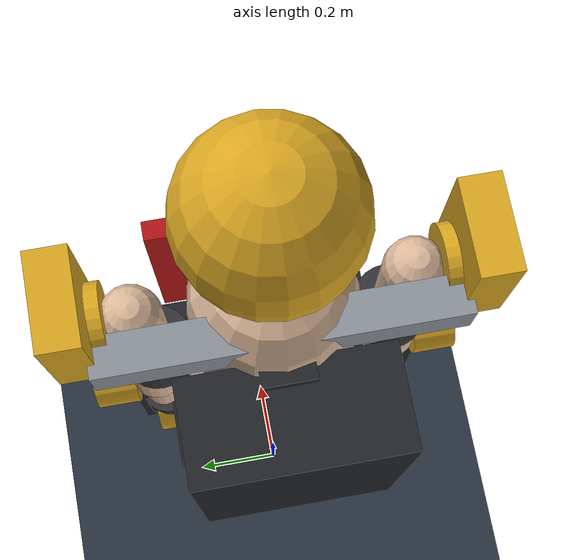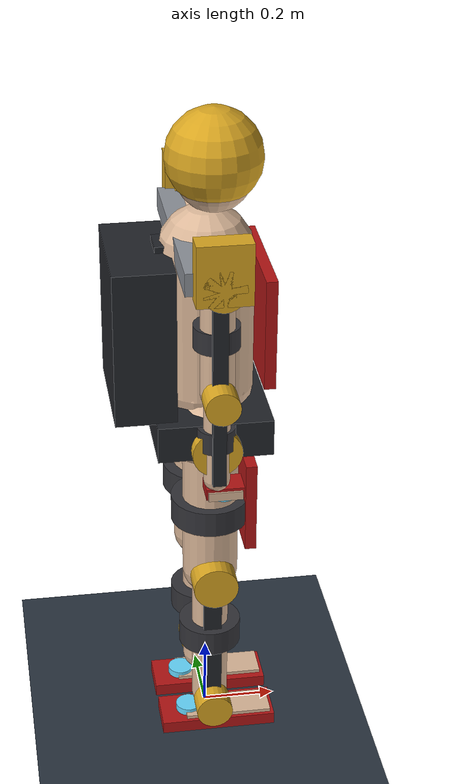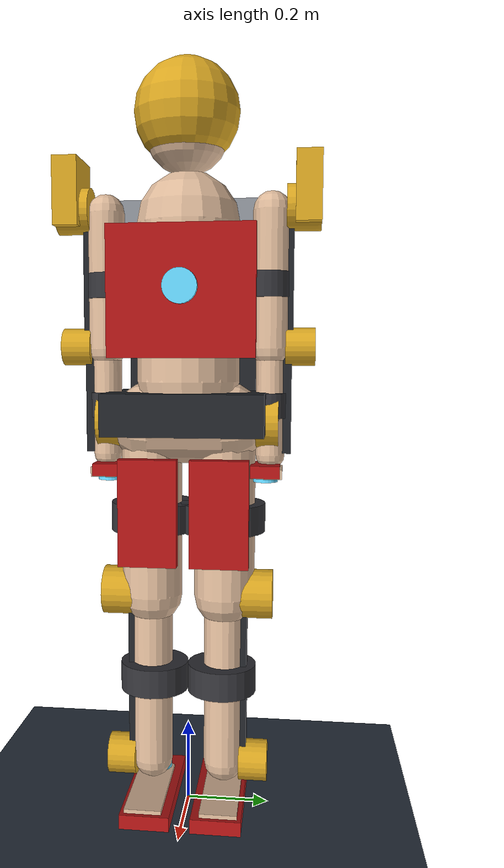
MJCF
<mujoco model="iron_man_exosuit">
  <compiler angle="radian" />

  <worldbody>
    <light pos="1.5 -2 3" dir="-0.4 0.5 -0.8" diffuse="0.9 0.9 0.9" castshadow="true" /><geom name="floor" type="plane" size="20 20 0.1" material="grid" contype="1" conaffinity="1" /><body name="pelvis_frame" pos="0 0 0.0050"><freejoint name="root" /><geom size="0.15 0.19 0.05" pos="0 0 0.98425" type="box" rgba="0.13 0.14 0.16 1" />
    <body name="spine_frame" pos="0 0 0.96425">
      <inertial pos="-0.101456 0 0.333504" quat="0.698535 0.109769 0.109769 0.698535" mass="15.8" diaginertia="0.684424 0.637274 0.307833" />
      <joint name="trunk_flex" range="-0.35 0.5" actuatorfrcrange="-120 120" damping="0.1" axis="0 1 0" />
      <geom size="0.025 0.04 0.252" pos="-0.11 0 0.252" type="box" rgba="0.13 0.14 0.16 1" />
      <geom size="0.08 0.16 0.21" pos="-0.175 0 0.2772" type="box" rgba="0.13 0.14 0.16 1" />
      <geom size="0.015 0.17 0.15" pos="0.14 0 0.3024" type="box" rgba="0.7 0.08 0.08 1" />
      <geom size="0.04 0.01" pos="0.16 0 0.31248" quat="0.707107 0 0.707107 0" type="cylinder" rgba="0.4 0.85 1 1" />
      <geom size="0.03 0.265 0.03" pos="-0.06 0 0.504" type="box" rgba="0.55 0.57 0.6 1" />
      <geom size="0.125" pos="0.02 0 0.72075" rgba="0.85 0.65 0.13 1" />
      <body name="left_shoulder_module" pos="0 0.235 0.504">
        <inertial pos="0 0.042381 0.00952381" quat="0.705575 -0.0465183 0.0465183 0.705575" mass="2.1" diaginertia="0.0045757 0.00392762 0.00340491" />
        <joint name="left_shoulder_abduction" range="-0.3 2.6" actuatorfrcrange="-60 60" damping="0.1" axis="1 0 0" />
        <geom size="0.055 0.04" pos="0 0.04 0" quat="0.707107 0.707107 0 0" type="cylinder" rgba="0.85 0.65 0.13 1" />
        <geom size="0.07 0.03 0.08" pos="0 0.05 0.04" type="box" rgba="0.85 0.65 0.13 1" />
        <body name="left_upper_arm_strut">
          <inertial pos="0 0.0106818 -0.246344" quat="0.994761 0.102225 0 0" mass="2.2" diaginertia="0.0241996 0.0232209 0.0028457" />
          <joint name="left_shoulder_flexion" range="-1 3" actuatorfrcrange="-60 60" damping="0.1" axis="0 1 0" />
          <geom size="0.02 0.0175 0.16275" pos="0 0 -0.16275" type="box" rgba="0.13 0.14 0.16 1" />
          <geom size="0.06 0.03" pos="0 -0.05 -0.179025" type="cylinder" rgba="0.2 0.2 0.22 1" />
          <geom size="0.045 0.035" pos="0 0.035 -0.3255" quat="0.707107 0.707107 0 0" type="cylinder" rgba="0.85 0.65 0.13 1" />
          <body name="left_forearm_strut" pos="0 0 -0.3255">
            <inertial pos="0 -0.0132353 -0.131507" quat="0.999837 -0.018029 0 0" mass="0.85" diaginertia="0.00392615 0.00358846 0.000772693" />
            <joint name="left_elbow_flexion" range="-2.4 0.05" actuatorfrcrange="-40 40" damping="0.1" axis="0 1 0" />
            <geom size="0.0175 0.015 0.12775" pos="0 0 -0.12775" type="box" rgba="0.13 0.14 0.16 1" />
            <geom size="0.05 0.03" pos="0 -0.045 -0.140525" type="cylinder" rgba="0.2 0.2 0.22 1" />
            <body name="left_hand" pos="0 0 -0.2555">
              <inertial pos="0.02 -0.045 -0.046" quat="0 0.707107 0 0.707107" mass="0.5" diaginertia="0.000502 0.000397 0.000248" />
              <joint name="left_wrist_flexion" range="-0.8 0.8" actuatorfrcrange="-15 15" damping="0.1" axis="1 0 0" />
              <geom size="0.05 0.035 0.015" pos="0.02 -0.045 -0.04" type="box" rgba="0.7 0.08 0.08 1" />
              <geom size="0.03 0.0075" pos="0.02 -0.045 -0.06" type="cylinder" rgba="0.4 0.85 1 1" />
            </body>
          </body>
        </body>
      </body>
      <body name="right_shoulder_module" pos="0 -0.235 0.504">
        <inertial pos="0 -0.042381 0.00952381" quat="0.705575 0.0465183 -0.0465183 0.705575" mass="2.1" diaginertia="0.0045757 0.00392762 0.00340491" />
        <joint name="right_shoulder_abduction" range="-0.3 2.6" actuatorfrcrange="-60 60" damping="0.1" axis="1 0 0" />
        <geom size="0.055 0.04" pos="0 -0.04 0" quat="0.707107 0.707107 0 0" type="cylinder" rgba="0.85 0.65 0.13 1" />
        <geom size="0.07 0.03 0.08" pos="0 -0.05 0.04" type="box" rgba="0.85 0.65 0.13 1" />
        <body name="right_upper_arm_strut">
          <inertial pos="0 -0.0106818 -0.246344" quat="0.994761 -0.102225 0 0" mass="2.2" diaginertia="0.0241996 0.0232209 0.0028457" />
          <joint name="right_shoulder_flexion" range="-1 3" actuatorfrcrange="-60 60" damping="0.1" axis="0 1 0" />
          <geom size="0.02 0.0175 0.16275" pos="0 0 -0.16275" type="box" rgba="0.13 0.14 0.16 1" />
          <geom size="0.06 0.03" pos="0 0.05 -0.179025" type="cylinder" rgba="0.2 0.2 0.22 1" />
          <geom size="0.045 0.035" pos="0 -0.035 -0.3255" quat="0.707107 0.707107 0 0" type="cylinder" rgba="0.85 0.65 0.13 1" />
          <body name="right_forearm_strut" pos="0 0 -0.3255">
            <inertial pos="0 0.0132353 -0.131507" quat="0.999837 0.018029 0 0" mass="0.85" diaginertia="0.00392615 0.00358846 0.000772693" />
            <joint name="right_elbow_flexion" range="-2.4 0.05" actuatorfrcrange="-40 40" damping="0.1" axis="0 1 0" />
            <geom size="0.0175 0.015 0.12775" pos="0 0 -0.12775" type="box" rgba="0.13 0.14 0.16 1" />
            <geom size="0.05 0.03" pos="0 0.045 -0.140525" type="cylinder" rgba="0.2 0.2 0.22 1" />
            <body name="right_hand" pos="0 0 -0.2555">
              <inertial pos="0.02 0.045 -0.046" quat="0 0.707107 0 0.707107" mass="0.5" diaginertia="0.000502 0.000397 0.000248" />
              <joint name="right_wrist_flexion" range="-0.8 0.8" actuatorfrcrange="-15 15" damping="0.1" axis="1 0 0" />
              <geom size="0.05 0.035 0.015" pos="0.02 0.045 -0.04" type="box" rgba="0.7 0.08 0.08 1" />
              <geom size="0.03 0.0075" pos="0.02 0.045 -0.06" type="cylinder" rgba="0.4 0.85 1 1" />
            </body>
          </body>
        </body>
      </body>
    </body>
    <body name="left_hip_module" pos="0 0.13 0.96425">
      <inertial pos="0 0.045 0" quat="0.5 0.5 -0.5 0.5" mass="2.4" diaginertia="0.00507 0.004155 0.004155" />
      <joint name="left_hip_abduction" range="-0.3 0.5" actuatorfrcrange="-120 120" damping="0.1" axis="1 0 0" />
      <geom size="0.065 0.045" pos="0 0.045 0" quat="0.707107 0.707107 0 0" type="cylinder" rgba="0.85 0.65 0.13 1" />
      <body name="left_thigh_strut">
        <inertial pos="0.0129032 0.00876344 -0.317874" quat="0.879776 0.110042 -0.00514419 0.462449" mass="4.65" diaginertia="0.0906661 0.0865579 0.015041" />
        <joint name="left_hip_flexion" range="-0.5 2" actuatorfrcrange="-150 150" damping="0.1" axis="0 1 0" />
        <geom size="0.0275 0.02 0.214375" pos="0 0 -0.214375" type="box" rgba="0.13 0.14 0.16 1" />
        <geom size="0.105 0.035" pos="0 -0.045 -0.235813" type="cylinder" rgba="0.2 0.2 0.22 1" />
        <geom size="0.015 0.07 0.128625" pos="0.1 -0.045 -0.214375" type="box" rgba="0.7 0.08 0.08 1" />
        <geom size="0.06 0.04" pos="0 0.04 -0.42875" quat="0.707107 0.707107 0 0" type="cylinder" rgba="0.85 0.65 0.13 1" />
        <body name="left_shank_strut" pos="0 0 -0.42875">
          <inertial pos="0 0.0115 -0.322875" quat="0.997127 0.0757495 0 0" mass="3" diaginertia="0.0565372 0.0555629 0.00475224" />
          <joint name="left_knee_flexion" range="-2.2 0.05" actuatorfrcrange="-150 150" damping="0.1" axis="0 1 0" />
          <geom size="0.025 0.0175 0.21525" pos="0 0 -0.21525" type="box" rgba="0.13 0.14 0.16 1" />
          <geom size="0.085 0.035" pos="0 -0.045 -0.21525" type="cylinder" rgba="0.2 0.2 0.22 1" />
          <geom size="0.05 0.035" pos="0 0.035 -0.4305" quat="0.707107 0.707107 0 0" type="cylinder" rgba="0.85 0.65 0.13 1" />
          <body name="left_boot" pos="0 0 -0.4305">
            <inertial pos="0.00933333 -0.045 -0.0838333" quat="0 0.718244 0 0.695792" mass="1.5" diaginertia="0.0138974 0.0125344 0.00187997" />
            <joint name="left_ankle_flexion" range="-0.6 0.6" actuatorfrcrange="-100 100" damping="0.1" axis="0 1 0" />
            <geom size="0.16 0.06 0.0175" pos="0.02 -0.045 -0.0875" type="box" rgba="0.7 0.08 0.08 1" />
            <geom size="0.035 0.01" pos="-0.06 -0.045 -0.06" type="cylinder" rgba="0.4 0.85 1 1" />
          </body>
        </body>
      </body>
    </body>
    <body name="right_hip_module" pos="0 -0.13 0.96425">
      <inertial pos="0 -0.045 0" quat="0.5 0.5 -0.5 0.5" mass="2.4" diaginertia="0.00507 0.004155 0.004155" />
      <joint name="right_hip_abduction" range="-0.3 0.5" actuatorfrcrange="-120 120" damping="0.1" axis="1 0 0" />
      <geom size="0.065 0.045" pos="0 -0.045 0" quat="0.707107 0.707107 0 0" type="cylinder" rgba="0.85 0.65 0.13 1" />
      <body name="right_thigh_strut">
        <inertial pos="0.0129032 -0.00876344 -0.317874" quat="0.462449 -0.00514419 0.110042 0.879776" mass="4.65" diaginertia="0.0906661 0.0865579 0.015041" />
        <joint name="right_hip_flexion" range="-0.5 2" actuatorfrcrange="-150 150" damping="0.1" axis="0 1 0" />
        <geom size="0.0275 0.02 0.214375" pos="0 0 -0.214375" type="box" rgba="0.13 0.14 0.16 1" />
        <geom size="0.105 0.035" pos="0 0.045 -0.235813" type="cylinder" rgba="0.2 0.2 0.22 1" />
        <geom size="0.015 0.07 0.128625" pos="0.1 0.045 -0.214375" type="box" rgba="0.7 0.08 0.08 1" />
        <geom size="0.06 0.04" pos="0 -0.04 -0.42875" quat="0.707107 0.707107 0 0" type="cylinder" rgba="0.85 0.65 0.13 1" />
        <body name="right_shank_strut" pos="0 0 -0.42875">
          <inertial pos="0 -0.0115 -0.322875" quat="0.997127 -0.0757495 0 0" mass="3" diaginertia="0.0565372 0.0555629 0.00475224" />
          <joint name="right_knee_flexion" range="-2.2 0.05" actuatorfrcrange="-150 150" damping="0.1" axis="0 1 0" />
          <geom size="0.025 0.0175 0.21525" pos="0 0 -0.21525" type="box" rgba="0.13 0.14 0.16 1" />
          <geom size="0.085 0.035" pos="0 0.045 -0.21525" type="cylinder" rgba="0.2 0.2 0.22 1" />
          <geom size="0.05 0.035" pos="0 -0.035 -0.4305" quat="0.707107 0.707107 0 0" type="cylinder" rgba="0.85 0.65 0.13 1" />
          <body name="right_boot" pos="0 0 -0.4305">
            <inertial pos="0.00933333 0.045 -0.0838333" quat="0 0.718244 0 0.695792" mass="1.5" diaginertia="0.0138974 0.0125344 0.00187997" />
            <joint name="right_ankle_flexion" range="-0.6 0.6" actuatorfrcrange="-100 100" damping="0.1" axis="0 1 0" />
            <geom size="0.16 0.06 0.0175" pos="0.02 0.045 -0.0875" type="box" rgba="0.7 0.08 0.08 1" />
            <geom size="0.035 0.01" pos="-0.06 0.045 -0.06" type="cylinder" rgba="0.4 0.85 1 1" />
          </body>
        </body>
      </body>
    </body>
  <inertial pos="0 0 0.98425" mass="3" diaginertia="0.0386 0.025 0.0586" /></body><body name="w_pelvis" pos="0 0 0.9642"><freejoint name="wearer_root" /><geom type="capsule" fromto="0 -0.09 0 0 0.09 0" size="0.10" mass="10.650" rgba="0.86 0.72 0.6 1" contype="0" conaffinity="0" /><body name="w_torso" pos="0 0 0.05"><joint name="w_trunk" type="hinge" axis="0 1 0" range="-0.4 0.6" damping="2" /><geom type="capsule" fromto="0 0 0.05 0 0 0.4240" size="0.125" mass="26.625" rgba="0.86 0.72 0.6 1" contype="0" conaffinity="0" /><body name="w_head" pos="0.02 0 0.5240"><geom type="sphere" size="0.10" pos="0 0 0.11" mass="6.075" rgba="0.86 0.72 0.6 1" contype="0" conaffinity="0" /></body><body name="w_left_upper_arm" pos="0 0.200 0.4540"><geom type="capsule" fromto="0 0 0 0 0 -0.3255" size="0.0450" mass="2.1000" rgba="0.86 0.72 0.6 1" contype="0" conaffinity="0" /><joint name="w_left_shoulder" type="hinge" axis="0 1 0" range="-1.0 3.0" damping="1" /><body name="w_left_forearm" pos="0 0 -0.3255"><geom type="capsule" fromto="0 0 0 0 0 -0.2555" size="0.0350" mass="1.2000" rgba="0.86 0.72 0.6 1" contype="0" conaffinity="0" /><joint name="w_left_elbow" type="hinge" axis="0 1 0" range="-2.4 0.05" damping="1" /><body name="w_left_hand" pos="0 0 -0.2555"><geom type="box" size="0.045 0.03 0.012" pos="0.02 0 -0.04" mass="0.450" rgba="0.86 0.72 0.6 1" contype="0" conaffinity="0" /></body></body></body><body name="w_right_upper_arm" pos="0 -0.200 0.4540"><geom type="capsule" fromto="0 0 0 0 0 -0.3255" size="0.0450" mass="2.1000" rgba="0.86 0.72 0.6 1" contype="0" conaffinity="0" /><joint name="w_right_shoulder" type="hinge" axis="0 1 0" range="-1.0 3.0" damping="1" /><body name="w_right_forearm" pos="0 0 -0.3255"><geom type="capsule" fromto="0 0 0 0 0 -0.2555" size="0.0350" mass="1.2000" rgba="0.86 0.72 0.6 1" contype="0" conaffinity="0" /><joint name="w_right_elbow" type="hinge" axis="0 1 0" range="-2.4 0.05" damping="1" /><body name="w_right_hand" pos="0 0 -0.2555"><geom type="box" size="0.045 0.03 0.012" pos="0.02 0 -0.04" mass="0.450" rgba="0.86 0.72 0.6 1" contype="0" conaffinity="0" /></body></body></body></body><body name="w_left_thigh" pos="0 0.090 0"><geom type="capsule" fromto="0 0 0 0 0 -0.4287" size="0.0750" mass="7.5000" rgba="0.86 0.72 0.6 1" contype="0" conaffinity="0" /><joint name="w_left_hip" type="hinge" axis="0 1 0" range="-0.6 2.0" damping="1.5" /><body name="w_left_shank" pos="0 0 -0.4287"><geom type="capsule" fromto="0 0 0 0 0 -0.4305" size="0.0500" mass="3.4875" rgba="0.86 0.72 0.6 1" contype="0" conaffinity="0" /><joint name="w_left_knee" type="hinge" axis="0 1 0" range="-2.2 0.05" damping="1.5" /><body name="w_left_foot" pos="0 0 -0.4305"><joint name="w_left_ankle" type="hinge" axis="0 1 0" range="-0.6 0.6" damping="1" /><geom type="box" size="0.12 0.045 0.02" pos="0.05 0 -0.0750" mass="1.088" rgba="0.86 0.72 0.6 1" contype="0" conaffinity="0" /></body></body></body><body name="w_right_thigh" pos="0 -0.090 0"><geom type="capsule" fromto="0 0 0 0 0 -0.4287" size="0.0750" mass="7.5000" rgba="0.86 0.72 0.6 1" contype="0" conaffinity="0" /><joint name="w_right_hip" type="hinge" axis="0 1 0" range="-0.6 2.0" damping="1.5" /><body name="w_right_shank" pos="0 0 -0.4287"><geom type="capsule" fromto="0 0 0 0 0 -0.4305" size="0.0500" mass="3.4875" rgba="0.86 0.72 0.6 1" contype="0" conaffinity="0" /><joint name="w_right_knee" type="hinge" axis="0 1 0" range="-2.2 0.05" damping="1.5" /><body name="w_right_foot" pos="0 0 -0.4305"><joint name="w_right_ankle" type="hinge" axis="0 1 0" range="-0.6 0.6" damping="1" /><geom type="box" size="0.12 0.045 0.02" pos="0.05 0 -0.0750" mass="1.088" rgba="0.86 0.72 0.6 1" contype="0" conaffinity="0" /></body></body></body></body></worldbody>
<option timestep="0.002" gravity="0 0 -9.81" integrator="implicitfast" /><default><joint damping="0.6" armature="0.01" frictionloss="0.05" /><geom friction="1 0.005 0.0001" condim="3" solref="0.005 1" solimp="0.95 0.99 0.001" contype="1" conaffinity="0" /><position kp="2908.4" forcerange="-1164 1164" /></default><asset><texture type="skybox" builtin="gradient" rgb1="0.35 0.45 0.6" rgb2="0.05 0.06 0.08" width="256" height="256" /><texture name="grid" type="2d" builtin="checker" rgb1="0.2 0.25 0.3" rgb2="0.12 0.15 0.19" width="512" height="512" /><material name="grid" texture="grid" texrepeat="10 10" reflectance="0.15" /></asset><visual><headlight diffuse="0.7 0.7 0.7" ambient="0.35 0.35 0.35" /><global offwidth="1280" offheight="720" /></visual><actuator><position name="act_trunk_flex" joint="trunk_flex" ctrlrange="-0.35 0.5" ctrllimited="true" /><position name="act_left_shoulder_abduction" joint="left_shoulder_abduction" ctrlrange="-0.3 2.6" ctrllimited="true" /><position name="act_left_shoulder_flexion" joint="left_shoulder_flexion" ctrlrange="-1 3" ctrllimited="true" /><position name="act_left_elbow_flexion" joint="left_elbow_flexion" ctrlrange="-2.4 0.05" ctrllimited="true" /><position name="act_left_wrist_flexion" joint="left_wrist_flexion" ctrlrange="-0.8 0.8" ctrllimited="true" /><position name="act_right_shoulder_abduction" joint="right_shoulder_abduction" ctrlrange="-0.3 2.6" ctrllimited="true" /><position name="act_right_shoulder_flexion" joint="right_shoulder_flexion" ctrlrange="-1 3" ctrllimited="true" /><position name="act_right_elbow_flexion" joint="right_elbow_flexion" ctrlrange="-2.4 0.05" ctrllimited="true" /><position name="act_right_wrist_flexion" joint="right_wrist_flexion" ctrlrange="-0.8 0.8" ctrllimited="true" /><position name="act_left_hip_abduction" joint="left_hip_abduction" ctrlrange="-0.3 0.5" ctrllimited="true" /><position name="act_left_hip_flexion" joint="left_hip_flexion" ctrlrange="-0.5 2" ctrllimited="true" /><position name="act_left_knee_flexion" joint="left_knee_flexion" ctrlrange="-2.2 0.05" ctrllimited="true" /><position name="act_left_ankle_flexion" joint="left_ankle_flexion" ctrlrange="-0.6 0.6" ctrllimited="true" /><position name="act_right_hip_abduction" joint="right_hip_abduction" ctrlrange="-0.3 0.5" ctrllimited="true" /><position name="act_right_hip_flexion" joint="right_hip_flexion" ctrlrange="-0.5 2" ctrllimited="true" /><position name="act_right_knee_flexion" joint="right_knee_flexion" ctrlrange="-2.2 0.05" ctrllimited="true" /><position name="act_right_ankle_flexion" joint="right_ankle_flexion" ctrlrange="-0.6 0.6" ctrllimited="true" /></actuator><equality><weld body1="pelvis_frame" body2="w_pelvis" solref="0.02 1" solimp="0.9 0.95 0.001" /><weld body1="spine_frame" body2="w_torso" solref="0.02 1" solimp="0.9 0.95 0.001" /><weld body1="left_boot" body2="w_left_foot" solref="0.02 1" solimp="0.9 0.95 0.001" /><weld body1="right_boot" body2="w_right_foot" solref="0.02 1" solimp="0.9 0.95 0.001" /><weld body1="left_hand" body2="w_left_hand" solref="0.02 1" solimp="0.9 0.95 0.001" /><weld body1="right_hand" body2="w_right_hand" solref="0.02 1" solimp="0.9 0.95 0.001" /></equality></mujoco>
